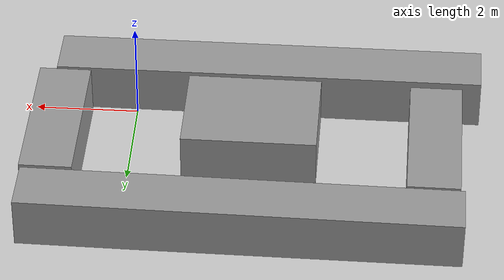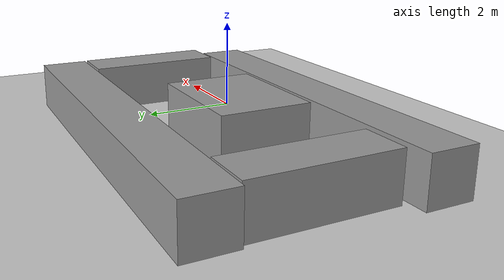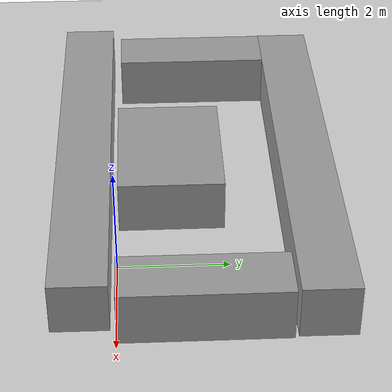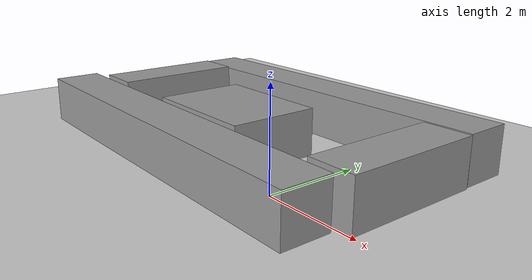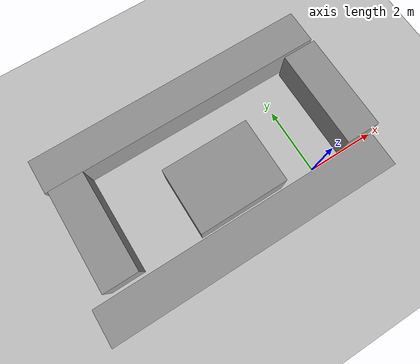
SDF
<sdf version="1.6">
 <world name="default">
  <light name="sun" type="directional">
   <pose>0 0 10 0 -0 0</pose>
   <diffuse>0.8 0.8 0.8 1</diffuse>
   <specular>0.2 0.2 0.2 1</specular>
   <attenuation>
    <range>1000</range>
    <constant>0.9</constant>
    <linear>0.01</linear>
    <quadratic>0.001</quadratic>
   </attenuation>
   <direction>-0.5 0.1 -0.9</direction>
  </light>
  <model name="ground_plane">
   <static>1</static>
   <link name="link">
    <collision name="collision">
     <geometry><plane><normal>0 0 1</normal><size>100 100</size></plane></geometry>
     <surface>
      <contact><collide_bitmask>65535</collide_bitmask></contact>
      <friction><ode><mu>100</mu><mu2>50</mu2></ode></friction>
     </surface>
    </collision>
    <visual name="visual">
     <cast_shadows>0</cast_shadows>
     <geometry><plane><normal>0 0 1</normal><size>100 100</size></plane></geometry>
     <material>
      <script><uri>file://media/materials/scripts/gazebo.material</uri><name>Gazebo/Grey</name></script>
     </material>
    </visual>
   </link>
  </model>
  <gravity>0 0 -9.8</gravity>
  <magnetic_field>6e-06 2.3e-05 -4.2e-05</magnetic_field>
  <atmosphere type="adiabatic"/>
  <physics name="default_physics" default="0" type="ode">
   <max_step_size>0.001</max_step_size>
   <real_time_factor>1</real_time_factor>
   <real_time_update_rate>1000</real_time_update_rate>
  </physics>
  <scene><ambient>0.4 0.4 0.4 1</ambient><background>0.7 0.7 0.7 1</background><shadows>1</shadows></scene>
  <audio><device>default</device></audio>
  <spherical_coordinates>
   <surface_model>EARTH_WGS84</surface_model>
   <latitude_deg>0</latitude_deg>
   <longitude_deg>0</longitude_deg>
   <elevation>0</elevation>
   <heading_deg>0</heading_deg>
  </spherical_coordinates>
  <model name="unit_box">
   <pose>1.39256 1.46765 0.499998 0 -5e-06 1.8e-05</pose>
   <link name="link">
    <inertial>
     <mass>1</mass>
     <inertia>
      <ixx>0.166667</ixx>
      <ixy>0</ixy>
      <ixz>0</ixz>
      <iyy>0.166667</iyy>
      <iyz>0</iyz>
      <izz>0.166667</izz>
     </inertia>
    </inertial>
    <collision name="collision"><geometry><box><size>1 2.92447 1</size></box></geometry></collision>
    <visual name="visual">
     <geometry><box><size>1 2.92447 1</size></box></geometry>
     <material>
      <script><name>Gazebo/Grey</name><uri>file://media/materials/scripts/gazebo.material</uri></script>
     </material>
    </visual>
   </link>
  </model>
  <model name="unit_box_clone">
   <pose>-2.32618 0.996322 0.5 0 -0 0</pose>
   <link name="link">
    <inertial>
     <mass>1</mass>
     <inertia>
      <ixx>0.166667</ixx>
      <ixy>0</ixy>
      <ixz>0</ixz>
      <iyy>0.166667</iyy>
      <iyz>0</iyz>
      <izz>0.166667</izz>
     </inertia>
    </inertial>
    <collision name="collision"><geometry><box><size>2.57358 1.92914 1</size></box></geometry></collision>
    <visual name="visual">
     <geometry><box><size>2.57358 1.92914 1</size></box></geometry>
     <material>
      <script><name>Gazebo/Grey</name><uri>file://media/materials/scripts/gazebo.material</uri></script>
     </material>
    </visual>
   </link>
  </model>
  <model name="unit_box_clone_2_clone">
   <pose>-2.5661 -0.597061 0.480492 0.004719 1.1e-05 1.56852</pose>
   <link name="link">
    <inertial>
     <mass>1</mass>
     <inertia>
      <ixx>0.166667</ixx>
      <ixy>0</ixy>
      <ixz>0</ixz>
      <iyy>0.166667</iyy>
      <iyz>0</iyz>
      <izz>0.166667</izz>
     </inertia>
    </inertial>
    <collision name="collision"><geometry><box><size>1 8.27971 1</size></box></geometry></collision>
    <visual name="visual">
     <geometry><box><size>1 8.27971 1</size></box></geometry>
     <material>
      <script><name>Gazebo/Grey</name><uri>file://media/materials/scripts/gazebo.material</uri></script>
     </material>
    </visual>
   </link>
  </model>
  <model name="unit_box_clone_2_clone_clone">
   <pose>-2.28178 3.50363 0.480492 -0.004719 -1.1e-05 1.56852</pose>
   <link name="link">
    <inertial>
     <mass>1</mass>
     <inertia>
      <ixx>0.166667</ixx>
      <ixy>0</ixy>
      <ixz>0</ixz>
      <iyy>0.166667</iyy>
      <iyz>0</iyz>
      <izz>0.166667</izz>
     </inertia>
    </inertial>
    <collision name="collision"><geometry><box><size>1 8.27972 1</size></box></geometry></collision>
    <visual name="visual">
     <geometry><box><size>1 8.27972 1</size></box></geometry>
     <material>
      <script><name>Gazebo/Grey</name><uri>file://media/materials/scripts/gazebo.material</uri></script>
     </material>
    </visual>
   </link>
  </model>
  <model name="unit_box_clone_0">
   <pose>-5.83997 1.54547 0.499847 -0.000105 -0 2e-06</pose>
   <link name="link">
    <inertial>
     <mass>1</mass>
     <inertia>
      <ixx>0.166667</ixx>
      <ixy>0</ixy>
      <ixz>0</ixz>
      <iyy>0.166667</iyy>
      <iyz>0</iyz>
      <izz>0.166667</izz>
     </inertia>
    </inertial>
    <collision name="collision"><geometry><box><size>1 2.92448 1</size></box></geometry></collision>
    <visual name="visual">
     <geometry><box><size>1 2.92448 1</size></box></geometry>
     <material>
      <script><name>Gazebo/Grey</name><uri>file://media/materials/scripts/gazebo.material</uri></script>
     </material>
    </visual>
   </link>
  </model>
 </world>
</sdf>
